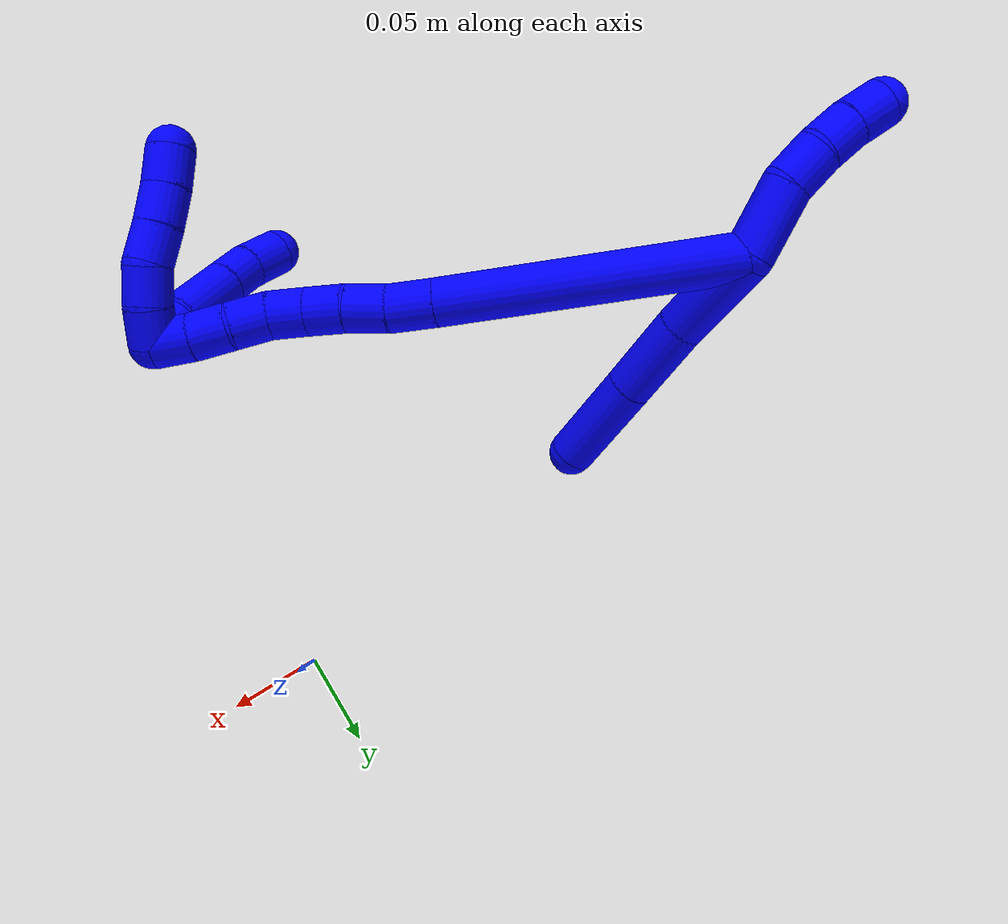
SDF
<sdf version="1.7">
 <world name="default">
  <model name="1">
   <static>0</static>
   <link name="1">
    <collision name="collision-cylinder-e_1_2_8">
     <pose>-0.002535 -0.001462 -0.025619 3.08459 -0.098456 -2.09243</pose>
     <geometry><cylinder><radius>0.0125</radius><length>0.051571</length></cylinder></geometry>
     <surface>
      <friction><ode><mu>1.16</mu><mu2>1.16</mu2><slip1>0</slip1><slip2>0</slip2></ode></friction>
      <contact><ode><kp>1e+06</kp><kd>1</kd><max_vel>0</max_vel><min_depth>0.001</min_depth></ode></contact>
     </surface>
    </collision>
    <visual name="visual-cylinder-e_1_2_8">
     <pose>-0.002535 -0.001462 -0.025619 3.08459 -0.098456 -2.09243</pose>
     <geometry><cylinder><radius>0.0125</radius><length>0.051571</length></cylinder></geometry>
     <material><ambient>0 0 1 1</ambient></material>
    </visual>
    <collision name="collision-cylinder-e_2_8_9">
     <pose>-0.005978 -0.002462 -0.073418 -3.12076 -0.040922 2.19975</pose>
     <geometry><cylinder><radius>0.0125</radius><length>0.044406</length></cylinder></geometry>
     <surface>
      <friction><ode><mu>1.16</mu><mu2>1.16</mu2><slip1>0</slip1><slip2>0</slip2></ode></friction>
      <contact><ode><kp>1e+06</kp><kd>1</kd><max_vel>0</max_vel><min_depth>0.001</min_depth></ode></contact>
     </surface>
    </collision>
    <visual name="visual-cylinder-e_2_8_9">
     <pose>-0.005978 -0.002462 -0.073418 -3.12076 -0.040922 2.19975</pose>
     <geometry><cylinder><radius>0.0125</radius><length>0.044406</length></cylinder></geometry>
     <material><ambient>0 0 1 1</ambient></material>
    </visual>
    <collision name="collision-cylinder-e_3_9_6">
     <pose>-0.00782 -0.001581 -0.122589 -3.1261 -0.034585 2.29958</pose>
     <geometry><cylinder><radius>0.0125</radius><length>0.054023</length></cylinder></geometry>
     <surface>
      <friction><ode><mu>1.16</mu><mu2>1.16</mu2><slip1>0</slip1><slip2>0</slip2></ode></friction>
      <contact><ode><kp>1e+06</kp><kd>1</kd><max_vel>0</max_vel><min_depth>0.001</min_depth></ode></contact>
     </surface>
    </collision>
    <visual name="visual-cylinder-e_3_9_6">
     <pose>-0.00782 -0.001581 -0.122589 -3.1261 -0.034585 2.29958</pose>
     <geometry><cylinder><radius>0.0125</radius><length>0.054023</length></cylinder></geometry>
     <material><ambient>0 0 1 1</ambient></material>
    </visual>
    <collision name="collision-cylinder-e_1_2_10">
     <pose>-0.005507 -0.006507 0.016806 0.369395 -0.296572 -0.055803</pose>
     <geometry><cylinder><radius>0.0125</radius><length>0.03769</length></cylinder></geometry>
     <surface>
      <friction><ode><mu>1.16</mu><mu2>1.16</mu2><slip1>0</slip1><slip2>0</slip2></ode></friction>
      <contact><ode><kp>1e+06</kp><kd>1</kd><max_vel>0</max_vel><min_depth>0.001</min_depth></ode></contact>
     </surface>
    </collision>
    <visual name="visual-cylinder-e_1_2_10">
     <pose>-0.005507 -0.006507 0.016806 0.369395 -0.296572 -0.055803</pose>
     <geometry><cylinder><radius>0.0125</radius><length>0.03769</length></cylinder></geometry>
     <material><ambient>0 0 1 1</ambient></material>
    </visual>
    <collision name="collision-cylinder-e_2_10_11">
     <pose>-0.016206 -0.014443 0.043252 0.147212 -0.489498 -0.036829</pose>
     <geometry><cylinder><radius>0.0125</radius><length>0.022081</length></cylinder></geometry>
     <surface>
      <friction><ode><mu>1.16</mu><mu2>1.16</mu2><slip1>0</slip1><slip2>0</slip2></ode></friction>
      <contact><ode><kp>1e+06</kp><kd>1</kd><max_vel>0</max_vel><min_depth>0.001</min_depth></ode></contact>
     </surface>
    </collision>
    <visual name="visual-cylinder-e_2_10_11">
     <pose>-0.016206 -0.014443 0.043252 0.147212 -0.489498 -0.036829</pose>
     <geometry><cylinder><radius>0.0125</radius><length>0.022081</length></cylinder></geometry>
     <material><ambient>0 0 1 1</ambient></material>
    </visual>
    <collision name="collision-cylinder-e_3_11_12">
     <pose>-0.027913 -0.01665 0.060553 0.101083 -0.702196 -0.037051</pose>
     <geometry><cylinder><radius>0.0125</radius><length>0.020177</length></cylinder></geometry>
     <surface>
      <friction><ode><mu>1.16</mu><mu2>1.16</mu2><slip1>0</slip1><slip2>0</slip2></ode></friction>
      <contact><ode><kp>1e+06</kp><kd>1</kd><max_vel>0</max_vel><min_depth>0.001</min_depth></ode></contact>
     </surface>
    </collision>
    <visual name="visual-cylinder-e_3_11_12">
     <pose>-0.027913 -0.01665 0.060553 0.101083 -0.702196 -0.037051</pose>
     <geometry><cylinder><radius>0.0125</radius><length>0.020177</length></cylinder></geometry>
     <material><ambient>0 0 1 1</ambient></material>
    </visual>
    <collision name="collision-cylinder-e_4_12_5">
     <pose>-0.041192 -0.016978 0.075604 -0.060632 -0.74032 0.023534</pose>
     <geometry><cylinder><radius>0.0125</radius><length>0.020052</length></cylinder></geometry>
     <surface>
      <friction><ode><mu>1.16</mu><mu2>1.16</mu2><slip1>0</slip1><slip2>0</slip2></ode></friction>
      <contact><ode><kp>1e+06</kp><kd>1</kd><max_vel>0</max_vel><min_depth>0.001</min_depth></ode></contact>
     </surface>
    </collision>
    <visual name="visual-cylinder-e_4_12_5">
     <pose>-0.041192 -0.016978 0.075604 -0.060632 -0.74032 0.023534</pose>
     <geometry><cylinder><radius>0.0125</radius><length>0.020052</length></cylinder></geometry>
     <material><ambient>0 0 1 1</ambient></material>
    </visual>
    <collision name="collision-cylinder-e_1_2_13">
     <pose>0.03582 -0.041221 -0.053983 2.48944 0.485305 1.26379</pose>
     <geometry><cylinder><radius>0.0125</radius><length>0.153576</length></cylinder></geometry>
     <surface>
      <friction><ode><mu>1.16</mu><mu2>1.16</mu2><slip1>0</slip1><slip2>0</slip2></ode></friction>
      <contact><ode><kp>1e+06</kp><kd>1</kd><max_vel>0</max_vel><min_depth>0.001</min_depth></ode></contact>
     </surface>
    </collision>
    <visual name="visual-cylinder-e_1_2_13">
     <pose>0.03582 -0.041221 -0.053983 2.48944 0.485305 1.26379</pose>
     <geometry><cylinder><radius>0.0125</radius><length>0.153576</length></cylinder></geometry>
     <material><ambient>0 0 1 1</ambient></material>
    </visual>
    <collision name="collision-cylinder-e_2_13_14">
     <pose>0.077329 -0.089137 -0.116417 2.47172 0.48551 1.23681</pose>
     <geometry><cylinder><radius>0.0125</radius><length>0.024381</length></cylinder></geometry>
     <surface>
      <friction><ode><mu>1.16</mu><mu2>1.16</mu2><slip1>0</slip1><slip2>0</slip2></ode></friction>
      <contact><ode><kp>1e+06</kp><kd>1</kd><max_vel>0</max_vel><min_depth>0.001</min_depth></ode></contact>
     </surface>
    </collision>
    <visual name="visual-cylinder-e_2_13_14">
     <pose>0.077329 -0.089137 -0.116417 2.47172 0.48551 1.23681</pose>
     <geometry><cylinder><radius>0.0125</radius><length>0.024381</length></cylinder></geometry>
     <material><ambient>0 0 1 1</ambient></material>
    </visual>
    <collision name="collision-cylinder-e_3_14_15">
     <pose>0.088333 -0.102736 -0.131226 2.31498 0.515341 1.08213</pose>
     <geometry><cylinder><radius>0.0125</radius><length>0.021572</length></cylinder></geometry>
     <surface>
      <friction><ode><mu>1.16</mu><mu2>1.16</mu2><slip1>0</slip1><slip2>0</slip2></ode></friction>
      <contact><ode><kp>1e+06</kp><kd>1</kd><max_vel>0</max_vel><min_depth>0.001</min_depth></ode></contact>
     </surface>
    </collision>
    <visual name="visual-cylinder-e_3_14_15">
     <pose>0.088333 -0.102736 -0.131226 2.31498 0.515341 1.08213</pose>
     <geometry><cylinder><radius>0.0125</radius><length>0.021572</length></cylinder></geometry>
     <material><ambient>0 0 1 1</ambient></material>
    </visual>
    <collision name="collision-cylinder-e_4_15_16">
     <pose>0.097808 -0.115694 -0.144506 2.42303 0.424709 1.04225</pose>
     <geometry><cylinder><radius>0.0125</radius><length>0.020188</length></cylinder></geometry>
     <surface>
      <friction><ode><mu>1.16</mu><mu2>1.16</mu2><slip1>0</slip1><slip2>0</slip2></ode></friction>
      <contact><ode><kp>1e+06</kp><kd>1</kd><max_vel>0</max_vel><min_depth>0.001</min_depth></ode></contact>
     </surface>
    </collision>
    <visual name="visual-cylinder-e_4_15_16">
     <pose>0.097808 -0.115694 -0.144506 2.42303 0.424709 1.04225</pose>
     <geometry><cylinder><radius>0.0125</radius><length>0.020188</length></cylinder></geometry>
     <material><ambient>0 0 1 1</ambient></material>
    </visual>
    <collision name="collision-cylinder-e_5_16_17">
     <pose>0.107381 -0.127225 -0.157873 2.43717 0.569427 1.34494</pose>
     <geometry><cylinder><radius>0.0125</radius><length>0.02008</length></cylinder></geometry>
     <surface>
      <friction><ode><mu>1.16</mu><mu2>1.16</mu2><slip1>0</slip1><slip2>0</slip2></ode></friction>
      <contact><ode><kp>1e+06</kp><kd>1</kd><max_vel>0</max_vel><min_depth>0.001</min_depth></ode></contact>
     </surface>
    </collision>
    <visual name="visual-cylinder-e_5_16_17">
     <pose>0.107381 -0.127225 -0.157873 2.43717 0.569427 1.34494</pose>
     <geometry><cylinder><radius>0.0125</radius><length>0.02008</length></cylinder></geometry>
     <material><ambient>0 0 1 1</ambient></material>
    </visual>
    <collision name="collision-cylinder-e_6_17_18">
     <pose>0.119664 -0.135929 -0.170852 2.68289 0.755819 2.07838</pose>
     <geometry><cylinder><radius>0.0125</radius><length>0.020035</length></cylinder></geometry>
     <surface>
      <friction><ode><mu>1.16</mu><mu2>1.16</mu2><slip1>0</slip1><slip2>0</slip2></ode></friction>
      <contact><ode><kp>1e+06</kp><kd>1</kd><max_vel>0</max_vel><min_depth>0.001</min_depth></ode></contact>
     </surface>
    </collision>
    <visual name="visual-cylinder-e_6_17_18">
     <pose>0.119664 -0.135929 -0.170852 2.68289 0.755819 2.07838</pose>
     <geometry><cylinder><radius>0.0125</radius><length>0.020035</length></cylinder></geometry>
     <material><ambient>0 0 1 1</ambient></material>
    </visual>
    <collision name="collision-cylinder-e_7_18_19">
     <pose>0.132104 -0.143107 -0.184719 2.64729 0.589438 1.75468</pose>
     <geometry><cylinder><radius>0.0125</radius><length>0.020037</length></cylinder></geometry>
     <surface>
      <friction><ode><mu>1.16</mu><mu2>1.16</mu2><slip1>0</slip1><slip2>0</slip2></ode></friction>
      <contact><ode><kp>1e+06</kp><kd>1</kd><max_vel>0</max_vel><min_depth>0.001</min_depth></ode></contact>
     </surface>
    </collision>
    <visual name="visual-cylinder-e_7_18_19">
     <pose>0.132104 -0.143107 -0.184719 2.64729 0.589438 1.75468</pose>
     <geometry><cylinder><radius>0.0125</radius><length>0.020037</length></cylinder></geometry>
     <material><ambient>0 0 1 1</ambient></material>
    </visual>
    <collision name="collision-cylinder-e_8_19_1">
     <pose>0.143742 -0.151553 -0.198706 2.54765 0.647048 1.66206</pose>
     <geometry><cylinder><radius>0.0125</radius><length>0.020131</length></cylinder></geometry>
     <surface>
      <friction><ode><mu>1.16</mu><mu2>1.16</mu2><slip1>0</slip1><slip2>0</slip2></ode></friction>
      <contact><ode><kp>1e+06</kp><kd>1</kd><max_vel>0</max_vel><min_depth>0.001</min_depth></ode></contact>
     </surface>
    </collision>
    <visual name="visual-cylinder-e_8_19_1">
     <pose>0.143742 -0.151553 -0.198706 2.54765 0.647048 1.66206</pose>
     <geometry><cylinder><radius>0.0125</radius><length>0.020131</length></cylinder></geometry>
     <material><ambient>0 0 1 1</ambient></material>
    </visual>
    <collision name="collision-cylinder-e_1_1_20">
     <pose>0.141241 -0.160407 -0.200974 0.782208 -0.94545 -0.415657</pose>
     <geometry><cylinder><radius>0.0125</radius><length>0.021136</length></cylinder></geometry>
     <surface>
      <friction><ode><mu>1.16</mu><mu2>1.16</mu2><slip1>0</slip1><slip2>0</slip2></ode></friction>
      <contact><ode><kp>1e+06</kp><kd>1</kd><max_vel>0</max_vel><min_depth>0.001</min_depth></ode></contact>
     </surface>
    </collision>
    <visual name="visual-cylinder-e_1_1_20">
     <pose>0.141241 -0.160407 -0.200974 0.782208 -0.94545 -0.415657</pose>
     <geometry><cylinder><radius>0.0125</radius><length>0.021136</length></cylinder></geometry>
     <material><ambient>0 0 1 1</ambient></material>
    </visual>
    <collision name="collision-cylinder-e_2_20_21">
     <pose>0.116006 -0.171173 -0.191739 0.923075 -1.12173 -0.605628</pose>
     <geometry><cylinder><radius>0.0125</radius><length>0.037003</length></cylinder></geometry>
     <surface>
      <friction><ode><mu>1.16</mu><mu2>1.16</mu2><slip1>0</slip1><slip2>0</slip2></ode></friction>
      <contact><ode><kp>1e+06</kp><kd>1</kd><max_vel>0</max_vel><min_depth>0.001</min_depth></ode></contact>
     </surface>
    </collision>
    <visual name="visual-cylinder-e_2_20_21">
     <pose>0.116006 -0.171173 -0.191739 0.923075 -1.12173 -0.605628</pose>
     <geometry><cylinder><radius>0.0125</radius><length>0.037003</length></cylinder></geometry>
     <material><ambient>0 0 1 1</ambient></material>
    </visual>
    <collision name="collision-cylinder-e_3_21_22">
     <pose>0.090287 -0.181013 -0.184216 0.908837 -1.12238 -0.595891</pose>
     <geometry><cylinder><radius>0.0125</radius><length>0.020091</length></cylinder></geometry>
     <surface>
      <friction><ode><mu>1.16</mu><mu2>1.16</mu2><slip1>0</slip1><slip2>0</slip2></ode></friction>
      <contact><ode><kp>1e+06</kp><kd>1</kd><max_vel>0</max_vel><min_depth>0.001</min_depth></ode></contact>
     </surface>
    </collision>
    <visual name="visual-cylinder-e_3_21_22">
     <pose>0.090287 -0.181013 -0.184216 0.908837 -1.12238 -0.595891</pose>
     <geometry><cylinder><radius>0.0125</radius><length>0.020091</length></cylinder></geometry>
     <material><ambient>0 0 1 1</ambient></material>
    </visual>
    <collision name="collision-cylinder-e_4_22_4">
     <pose>0.071094 -0.186182 -0.177982 0.453423 -1.1988 -0.312653</pose>
     <geometry><cylinder><radius>0.0125</radius><length>0.02177</length></cylinder></geometry>
     <surface>
      <friction><ode><mu>1.16</mu><mu2>1.16</mu2><slip1>0</slip1><slip2>0</slip2></ode></friction>
      <contact><ode><kp>1e+06</kp><kd>1</kd><max_vel>0</max_vel><min_depth>0.001</min_depth></ode></contact>
     </surface>
    </collision>
    <visual name="visual-cylinder-e_4_22_4">
     <pose>0.071094 -0.186182 -0.177982 0.453423 -1.1988 -0.312653</pose>
     <geometry><cylinder><radius>0.0125</radius><length>0.02177</length></cylinder></geometry>
     <material><ambient>0 0 1 1</ambient></material>
    </visual>
    <collision name="collision-cylinder-e_1_1_23">
     <pose>0.151468 -0.162137 -0.197606 0.665676 0.166664 0.057733</pose>
     <geometry><cylinder><radius>0.0125</radius><length>0.02</length></cylinder></geometry>
     <surface>
      <friction><ode><mu>1.16</mu><mu2>1.16</mu2><slip1>0</slip1><slip2>0</slip2></ode></friction>
      <contact><ode><kp>1e+06</kp><kd>1</kd><max_vel>0</max_vel><min_depth>0.001</min_depth></ode></contact>
     </surface>
    </collision>
    <visual name="visual-cylinder-e_1_1_23">
     <pose>0.151468 -0.162137 -0.197606 0.665676 0.166664 0.057733</pose>
     <geometry><cylinder><radius>0.0125</radius><length>0.02</length></cylinder></geometry>
     <material><ambient>0 0 1 1</ambient></material>
    </visual>
    <collision name="collision-cylinder-e_2_23_24">
     <pose>0.152808 -0.174753 -0.182279 0.71137 -0.031967 -0.011876</pose>
     <geometry><cylinder><radius>0.0125</radius><length>0.02</length></cylinder></geometry>
     <surface>
      <friction><ode><mu>1.16</mu><mu2>1.16</mu2><slip1>0</slip1><slip2>0</slip2></ode></friction>
      <contact><ode><kp>1e+06</kp><kd>1</kd><max_vel>0</max_vel><min_depth>0.001</min_depth></ode></contact>
     </surface>
    </collision>
    <visual name="visual-cylinder-e_2_23_24">
     <pose>0.152808 -0.174753 -0.182279 0.71137 -0.031967 -0.011876</pose>
     <geometry><cylinder><radius>0.0125</radius><length>0.02</length></cylinder></geometry>
     <material><ambient>0 0 1 1</ambient></material>
    </visual>
    <collision name="collision-cylinder-e_3_24_25">
     <pose>0.148919 -0.187371 -0.167627 0.710546 -0.364972 -0.13672</pose>
     <geometry><cylinder><radius>0.0125</radius><length>0.02</length></cylinder></geometry>
     <surface>
      <friction><ode><mu>1.16</mu><mu2>1.16</mu2><slip1>0</slip1><slip2>0</slip2></ode></friction>
      <contact><ode><kp>1e+06</kp><kd>1</kd><max_vel>0</max_vel><min_depth>0.001</min_depth></ode></contact>
     </surface>
    </collision>
    <visual name="visual-cylinder-e_3_24_25">
     <pose>0.148919 -0.187371 -0.167627 0.710546 -0.364972 -0.13672</pose>
     <geometry><cylinder><radius>0.0125</radius><length>0.02</length></cylinder></geometry>
     <material><ambient>0 0 1 1</ambient></material>
    </visual>
    <collision name="collision-cylinder-e_4_25_26">
     <pose>0.141959 -0.200131 -0.153909 0.78757 -0.345913 -0.144918</pose>
     <geometry><cylinder><radius>0.0125</radius><length>0.02</length></cylinder></geometry>
     <surface>
      <friction><ode><mu>1.16</mu><mu2>1.16</mu2><slip1>0</slip1><slip2>0</slip2></ode></friction>
      <contact><ode><kp>1e+06</kp><kd>1</kd><max_vel>0</max_vel><min_depth>0.001</min_depth></ode></contact>
     </surface>
    </collision>
    <visual name="visual-cylinder-e_4_25_26">
     <pose>0.141959 -0.200131 -0.153909 0.78757 -0.345913 -0.144918</pose>
     <geometry><cylinder><radius>0.0125</radius><length>0.02</length></cylinder></geometry>
     <material><ambient>0 0 1 1</ambient></material>
    </visual>
    <collision name="collision-cylinder-e_5_26_3">
     <pose>0.135774 -0.213955 -0.140872 0.841283 -0.283246 -0.127389</pose>
     <geometry><cylinder><radius>0.0125</radius><length>0.02</length></cylinder></geometry>
     <surface>
      <friction><ode><mu>1.16</mu><mu2>1.16</mu2><slip1>0</slip1><slip2>0</slip2></ode></friction>
      <contact><ode><kp>1e+06</kp><kd>1</kd><max_vel>0</max_vel><min_depth>0.001</min_depth></ode></contact>
     </surface>
    </collision>
    <visual name="visual-cylinder-e_5_26_3">
     <pose>0.135774 -0.213955 -0.140872 0.841283 -0.283246 -0.127389</pose>
     <geometry><cylinder><radius>0.0125</radius><length>0.02</length></cylinder></geometry>
     <material><ambient>0 0 1 1</ambient></material>
    </visual>
    <collision name="collision-sphere-3">
     <pose>0.132979 -0.221113 -0.134472 0 -0 0</pose>
     <geometry><sphere><radius>0.0125</radius></sphere></geometry>
     <surface>
      <friction><ode><mu>1.16</mu><mu2>1.16</mu2><slip1>0</slip1><slip2>0</slip2></ode></friction>
      <contact><ode><kp>1e+06</kp><kd>1</kd><max_vel>0</max_vel><min_depth>0.001</min_depth></ode></contact>
     </surface>
    </collision>
    <visual name="visual-sphere-3">
     <pose>0.132979 -0.221113 -0.134472 0 -0 0</pose>
     <geometry><sphere><radius>0.0125</radius></sphere></geometry>
     <material><ambient>0 0 1 1</ambient></material>
    </visual>
    <collision name="collision-sphere-26">
     <pose>0.138568 -0.206797 -0.147271 0 -0 0</pose>
     <geometry><sphere><radius>0.0125</radius></sphere></geometry>
     <surface>
      <friction><ode><mu>1.16</mu><mu2>1.16</mu2><slip1>0</slip1><slip2>0</slip2></ode></friction>
      <contact><ode><kp>1e+06</kp><kd>1</kd><max_vel>0</max_vel><min_depth>0.001</min_depth></ode></contact>
     </surface>
    </collision>
    <visual name="visual-sphere-26">
     <pose>0.138568 -0.206797 -0.147271 0 -0 0</pose>
     <geometry><sphere><radius>0.0125</radius></sphere></geometry>
     <material><ambient>0 0 1 1</ambient></material>
    </visual>
    <collision name="collision-sphere-25">
     <pose>0.145349 -0.193464 -0.160547 0 -0 0</pose>
     <geometry><sphere><radius>0.0125</radius></sphere></geometry>
     <surface>
      <friction><ode><mu>1.16</mu><mu2>1.16</mu2><slip1>0</slip1><slip2>0</slip2></ode></friction>
      <contact><ode><kp>1e+06</kp><kd>1</kd><max_vel>0</max_vel><min_depth>0.001</min_depth></ode></contact>
     </surface>
    </collision>
    <visual name="visual-sphere-25">
     <pose>0.145349 -0.193464 -0.160547 0 -0 0</pose>
     <geometry><sphere><radius>0.0125</radius></sphere></geometry>
     <material><ambient>0 0 1 1</ambient></material>
    </visual>
    <collision name="collision-sphere-24">
     <pose>0.152488 -0.181278 -0.174708 0 -0 0</pose>
     <geometry><sphere><radius>0.0125</radius></sphere></geometry>
     <surface>
      <friction><ode><mu>1.16</mu><mu2>1.16</mu2><slip1>0</slip1><slip2>0</slip2></ode></friction>
      <contact><ode><kp>1e+06</kp><kd>1</kd><max_vel>0</max_vel><min_depth>0.001</min_depth></ode></contact>
     </surface>
    </collision>
    <visual name="visual-sphere-24">
     <pose>0.152488 -0.181278 -0.174708 0 -0 0</pose>
     <geometry><sphere><radius>0.0125</radius></sphere></geometry>
     <material><ambient>0 0 1 1</ambient></material>
    </visual>
    <collision name="collision-sphere-23">
     <pose>0.153127 -0.168228 -0.18985 0 -0 0</pose>
     <geometry><sphere><radius>0.0125</radius></sphere></geometry>
     <surface>
      <friction><ode><mu>1.16</mu><mu2>1.16</mu2><slip1>0</slip1><slip2>0</slip2></ode></friction>
      <contact><ode><kp>1e+06</kp><kd>1</kd><max_vel>0</max_vel><min_depth>0.001</min_depth></ode></contact>
     </surface>
    </collision>
    <visual name="visual-sphere-23">
     <pose>0.153127 -0.168228 -0.18985 0 -0 0</pose>
     <geometry><sphere><radius>0.0125</radius></sphere></geometry>
     <material><ambient>0 0 1 1</ambient></material>
    </visual>
    <collision name="collision-sphere-4">
     <pose>0.060953 -0.187915 -0.174426 0 -0 0</pose>
     <geometry><sphere><radius>0.0125</radius></sphere></geometry>
     <surface>
      <friction><ode><mu>1.16</mu><mu2>1.16</mu2><slip1>0</slip1><slip2>0</slip2></ode></friction>
      <contact><ode><kp>1e+06</kp><kd>1</kd><max_vel>0</max_vel><min_depth>0.001</min_depth></ode></contact>
     </surface>
    </collision>
    <visual name="visual-sphere-4">
     <pose>0.060953 -0.187915 -0.174426 0 -0 0</pose>
     <geometry><sphere><radius>0.0125</radius></sphere></geometry>
     <material><ambient>0 0 1 1</ambient></material>
    </visual>
    <collision name="collision-sphere-22">
     <pose>0.081234 -0.184449 -0.181539 0 -0 0</pose>
     <geometry><sphere><radius>0.0125</radius></sphere></geometry>
     <surface>
      <friction><ode><mu>1.16</mu><mu2>1.16</mu2><slip1>0</slip1><slip2>0</slip2></ode></friction>
      <contact><ode><kp>1e+06</kp><kd>1</kd><max_vel>0</max_vel><min_depth>0.001</min_depth></ode></contact>
     </surface>
    </collision>
    <visual name="visual-sphere-22">
     <pose>0.081234 -0.184449 -0.181539 0 -0 0</pose>
     <geometry><sphere><radius>0.0125</radius></sphere></geometry>
     <material><ambient>0 0 1 1</ambient></material>
    </visual>
    <collision name="collision-sphere-21">
     <pose>0.099339 -0.177578 -0.186893 0 -0 0</pose>
     <geometry><sphere><radius>0.0125</radius></sphere></geometry>
     <surface>
      <friction><ode><mu>1.16</mu><mu2>1.16</mu2><slip1>0</slip1><slip2>0</slip2></ode></friction>
      <contact><ode><kp>1e+06</kp><kd>1</kd><max_vel>0</max_vel><min_depth>0.001</min_depth></ode></contact>
     </surface>
    </collision>
    <visual name="visual-sphere-21">
     <pose>0.099339 -0.177578 -0.186893 0 -0 0</pose>
     <geometry><sphere><radius>0.0125</radius></sphere></geometry>
     <material><ambient>0 0 1 1</ambient></material>
    </visual>
    <collision name="collision-sphere-20">
     <pose>0.132673 -0.164768 -0.196585 0 -0 0</pose>
     <geometry><sphere><radius>0.0125</radius></sphere></geometry>
     <surface>
      <friction><ode><mu>1.16</mu><mu2>1.16</mu2><slip1>0</slip1><slip2>0</slip2></ode></friction>
      <contact><ode><kp>1e+06</kp><kd>1</kd><max_vel>0</max_vel><min_depth>0.001</min_depth></ode></contact>
     </surface>
    </collision>
    <visual name="visual-sphere-20">
     <pose>0.132673 -0.164768 -0.196585 0 -0 0</pose>
     <geometry><sphere><radius>0.0125</radius></sphere></geometry>
     <material><ambient>0 0 1 1</ambient></material>
    </visual>
    <collision name="collision-sphere-11">
     <pose>-0.021397 -0.015872 0.05289 0 -0 0</pose>
     <geometry><sphere><radius>0.0125</radius></sphere></geometry>
     <surface>
      <friction><ode><mu>1.16</mu><mu2>1.16</mu2><slip1>0</slip1><slip2>0</slip2></ode></friction>
      <contact><ode><kp>1e+06</kp><kd>1</kd><max_vel>0</max_vel><min_depth>0.001</min_depth></ode></contact>
     </surface>
    </collision>
    <visual name="visual-sphere-11">
     <pose>-0.021397 -0.015872 0.05289 0 -0 0</pose>
     <geometry><sphere><radius>0.0125</radius></sphere></geometry>
     <material><ambient>0 0 1 1</ambient></material>
    </visual>
    <collision name="collision-sphere-10">
     <pose>-0.011015 -0.013014 0.033613 0 -0 0</pose>
     <geometry><sphere><radius>0.0125</radius></sphere></geometry>
     <surface>
      <friction><ode><mu>1.16</mu><mu2>1.16</mu2><slip1>0</slip1><slip2>0</slip2></ode></friction>
      <contact><ode><kp>1e+06</kp><kd>1</kd><max_vel>0</max_vel><min_depth>0.001</min_depth></ode></contact>
     </surface>
    </collision>
    <visual name="visual-sphere-10">
     <pose>-0.011015 -0.013014 0.033613 0 -0 0</pose>
     <geometry><sphere><radius>0.0125</radius></sphere></geometry>
     <material><ambient>0 0 1 1</ambient></material>
    </visual>
    <collision name="collision-sphere-6">
     <pose>-0.008754 -0.001163 -0.149581 0 -0 0</pose>
     <geometry><sphere><radius>0.0125</radius></sphere></geometry>
     <surface>
      <friction><ode><mu>1.16</mu><mu2>1.16</mu2><slip1>0</slip1><slip2>0</slip2></ode></friction>
      <contact><ode><kp>1e+06</kp><kd>1</kd><max_vel>0</max_vel><min_depth>0.001</min_depth></ode></contact>
     </surface>
    </collision>
    <visual name="visual-sphere-6">
     <pose>-0.008754 -0.001163 -0.149581 0 -0 0</pose>
     <geometry><sphere><radius>0.0125</radius></sphere></geometry>
     <material><ambient>0 0 1 1</ambient></material>
    </visual>
    <collision name="collision-sphere-9">
     <pose>-0.006886 -0.001999 -0.095597 0 -0 0</pose>
     <geometry><sphere><radius>0.0125</radius></sphere></geometry>
     <surface>
      <friction><ode><mu>1.16</mu><mu2>1.16</mu2><slip1>0</slip1><slip2>0</slip2></ode></friction>
      <contact><ode><kp>1e+06</kp><kd>1</kd><max_vel>0</max_vel><min_depth>0.001</min_depth></ode></contact>
     </surface>
    </collision>
    <visual name="visual-sphere-9">
     <pose>-0.006886 -0.001999 -0.095597 0 -0 0</pose>
     <geometry><sphere><radius>0.0125</radius></sphere></geometry>
     <material><ambient>0 0 1 1</ambient></material>
    </visual>
    <collision name="collision-sphere-2">
     <geometry><sphere><radius>0.0125</radius></sphere></geometry>
     <surface>
      <friction><ode><mu>1.16</mu><mu2>1.16</mu2><slip1>0</slip1><slip2>0</slip2></ode></friction>
      <contact><ode><kp>1e+06</kp><kd>1</kd><max_vel>0</max_vel><min_depth>0.001</min_depth></ode></contact>
     </surface>
    </collision>
    <visual name="visual-sphere-2">
     <geometry><sphere><radius>0.0125</radius></sphere></geometry>
     <material><ambient>0 0 1 1</ambient></material>
    </visual>
    <collision name="collision-sphere-19">
     <pose>0.137674 -0.147058 -0.192051 0 -0 0</pose>
     <geometry><sphere><radius>0.0125</radius></sphere></geometry>
     <surface>
      <friction><ode><mu>1.16</mu><mu2>1.16</mu2><slip1>0</slip1><slip2>0</slip2></ode></friction>
      <contact><ode><kp>1e+06</kp><kd>1</kd><max_vel>0</max_vel><min_depth>0.001</min_depth></ode></contact>
     </surface>
    </collision>
    <visual name="visual-sphere-19">
     <pose>0.137674 -0.147058 -0.192051 0 -0 0</pose>
     <geometry><sphere><radius>0.0125</radius></sphere></geometry>
     <material><ambient>0 0 1 1</ambient></material>
    </visual>
    <collision name="collision-sphere-8">
     <pose>-0.005069 -0.002924 -0.051238 0 -0 0</pose>
     <geometry><sphere><radius>0.0125</radius></sphere></geometry>
     <surface>
      <friction><ode><mu>1.16</mu><mu2>1.16</mu2><slip1>0</slip1><slip2>0</slip2></ode></friction>
      <contact><ode><kp>1e+06</kp><kd>1</kd><max_vel>0</max_vel><min_depth>0.001</min_depth></ode></contact>
     </surface>
    </collision>
    <visual name="visual-sphere-8">
     <pose>-0.005069 -0.002924 -0.051238 0 -0 0</pose>
     <geometry><sphere><radius>0.0125</radius></sphere></geometry>
     <material><ambient>0 0 1 1</ambient></material>
    </visual>
    <collision name="collision-sphere-12">
     <pose>-0.034429 -0.017427 0.068216 0 -0 0</pose>
     <geometry><sphere><radius>0.0125</radius></sphere></geometry>
     <surface>
      <friction><ode><mu>1.16</mu><mu2>1.16</mu2><slip1>0</slip1><slip2>0</slip2></ode></friction>
      <contact><ode><kp>1e+06</kp><kd>1</kd><max_vel>0</max_vel><min_depth>0.001</min_depth></ode></contact>
     </surface>
    </collision>
    <visual name="visual-sphere-12">
     <pose>-0.034429 -0.017427 0.068216 0 -0 0</pose>
     <geometry><sphere><radius>0.0125</radius></sphere></geometry>
     <material><ambient>0 0 1 1</ambient></material>
    </visual>
    <collision name="collision-sphere-5">
     <pose>-0.047955 -0.01653 0.082992 0 -0 0</pose>
     <geometry><sphere><radius>0.0125</radius></sphere></geometry>
     <surface>
      <friction><ode><mu>1.16</mu><mu2>1.16</mu2><slip1>0</slip1><slip2>0</slip2></ode></friction>
      <contact><ode><kp>1e+06</kp><kd>1</kd><max_vel>0</max_vel><min_depth>0.001</min_depth></ode></contact>
     </surface>
    </collision>
    <visual name="visual-sphere-5">
     <pose>-0.047955 -0.01653 0.082992 0 -0 0</pose>
     <geometry><sphere><radius>0.0125</radius></sphere></geometry>
     <material><ambient>0 0 1 1</ambient></material>
    </visual>
    <collision name="collision-sphere-13">
     <pose>0.07164 -0.082443 -0.107965 0 -0 0</pose>
     <geometry><sphere><radius>0.0125</radius></sphere></geometry>
     <surface>
      <friction><ode><mu>1.16</mu><mu2>1.16</mu2><slip1>0</slip1><slip2>0</slip2></ode></friction>
      <contact><ode><kp>1e+06</kp><kd>1</kd><max_vel>0</max_vel><min_depth>0.001</min_depth></ode></contact>
     </surface>
    </collision>
    <visual name="visual-sphere-13">
     <pose>0.07164 -0.082443 -0.107965 0 -0 0</pose>
     <geometry><sphere><radius>0.0125</radius></sphere></geometry>
     <material><ambient>0 0 1 1</ambient></material>
    </visual>
    <collision name="collision-sphere-14">
     <pose>0.083018 -0.095832 -0.124869 0 -0 0</pose>
     <geometry><sphere><radius>0.0125</radius></sphere></geometry>
     <surface>
      <friction><ode><mu>1.16</mu><mu2>1.16</mu2><slip1>0</slip1><slip2>0</slip2></ode></friction>
      <contact><ode><kp>1e+06</kp><kd>1</kd><max_vel>0</max_vel><min_depth>0.001</min_depth></ode></contact>
     </surface>
    </collision>
    <visual name="visual-sphere-14">
     <pose>0.083018 -0.095832 -0.124869 0 -0 0</pose>
     <geometry><sphere><radius>0.0125</radius></sphere></geometry>
     <material><ambient>0 0 1 1</ambient></material>
    </visual>
    <collision name="collision-sphere-15">
     <pose>0.093649 -0.10964 -0.137583 0 -0 0</pose>
     <geometry><sphere><radius>0.0125</radius></sphere></geometry>
     <surface>
      <friction><ode><mu>1.16</mu><mu2>1.16</mu2><slip1>0</slip1><slip2>0</slip2></ode></friction>
      <contact><ode><kp>1e+06</kp><kd>1</kd><max_vel>0</max_vel><min_depth>0.001</min_depth></ode></contact>
     </surface>
    </collision>
    <visual name="visual-sphere-15">
     <pose>0.093649 -0.10964 -0.137583 0 -0 0</pose>
     <geometry><sphere><radius>0.0125</radius></sphere></geometry>
     <material><ambient>0 0 1 1</ambient></material>
    </visual>
    <collision name="collision-sphere-16">
     <pose>0.101967 -0.121749 -0.15143 0 -0 0</pose>
     <geometry><sphere><radius>0.0125</radius></sphere></geometry>
     <surface>
      <friction><ode><mu>1.16</mu><mu2>1.16</mu2><slip1>0</slip1><slip2>0</slip2></ode></friction>
      <contact><ode><kp>1e+06</kp><kd>1</kd><max_vel>0</max_vel><min_depth>0.001</min_depth></ode></contact>
     </surface>
    </collision>
    <visual name="visual-sphere-16">
     <pose>0.101967 -0.121749 -0.15143 0 -0 0</pose>
     <geometry><sphere><radius>0.0125</radius></sphere></geometry>
     <material><ambient>0 0 1 1</ambient></material>
    </visual>
    <collision name="collision-sphere-17">
     <pose>0.112794 -0.132701 -0.164316 0 -0 0</pose>
     <geometry><sphere><radius>0.0125</radius></sphere></geometry>
     <surface>
      <friction><ode><mu>1.16</mu><mu2>1.16</mu2><slip1>0</slip1><slip2>0</slip2></ode></friction>
      <contact><ode><kp>1e+06</kp><kd>1</kd><max_vel>0</max_vel><min_depth>0.001</min_depth></ode></contact>
     </surface>
    </collision>
    <visual name="visual-sphere-17">
     <pose>0.112794 -0.132701 -0.164316 0 -0 0</pose>
     <geometry><sphere><radius>0.0125</radius></sphere></geometry>
     <material><ambient>0 0 1 1</ambient></material>
    </visual>
    <collision name="collision-sphere-18">
     <pose>0.126535 -0.139156 -0.177388 0 -0 0</pose>
     <geometry><sphere><radius>0.0125</radius></sphere></geometry>
     <surface>
      <friction><ode><mu>1.16</mu><mu2>1.16</mu2><slip1>0</slip1><slip2>0</slip2></ode></friction>
      <contact><ode><kp>1e+06</kp><kd>1</kd><max_vel>0</max_vel><min_depth>0.001</min_depth></ode></contact>
     </surface>
    </collision>
    <visual name="visual-sphere-18">
     <pose>0.126535 -0.139156 -0.177388 0 -0 0</pose>
     <geometry><sphere><radius>0.0125</radius></sphere></geometry>
     <material><ambient>0 0 1 1</ambient></material>
    </visual>
    <collision name="collision-sphere-1">
     <pose>0.149809 -0.156047 -0.205362 0 -0 0</pose>
     <geometry><sphere><radius>0.0125</radius></sphere></geometry>
     <surface>
      <friction><ode><mu>1.16</mu><mu2>1.16</mu2><slip1>0</slip1><slip2>0</slip2></ode></friction>
      <contact><ode><kp>1e+06</kp><kd>1</kd><max_vel>0</max_vel><min_depth>0.001</min_depth></ode></contact>
     </surface>
    </collision>
    <visual name="visual-sphere-1">
     <pose>0.149809 -0.156047 -0.205362 0 -0 0</pose>
     <geometry><sphere><radius>0.0125</radius></sphere></geometry>
     <material><ambient>0 0 1 1</ambient></material>
    </visual>
    <inertial>
     <pose>0.058461 -0.082592 -0.098418 0 -0 0</pose>
     <mass>0.75</mass>
     <inertia><ixx>0.000353</ixx><ixy>0</ixy><ixz>0</ixz><iyy>0.00031</iyy><iyz>0</iyz><izz>3.6e-05</izz></inertia>
    </inertial>
   </link>
   <pose>-0.296107 -0.05954 0.104277 0.380329 -0.915875 -0.181741</pose>
  </model>
 </world>
</sdf>
